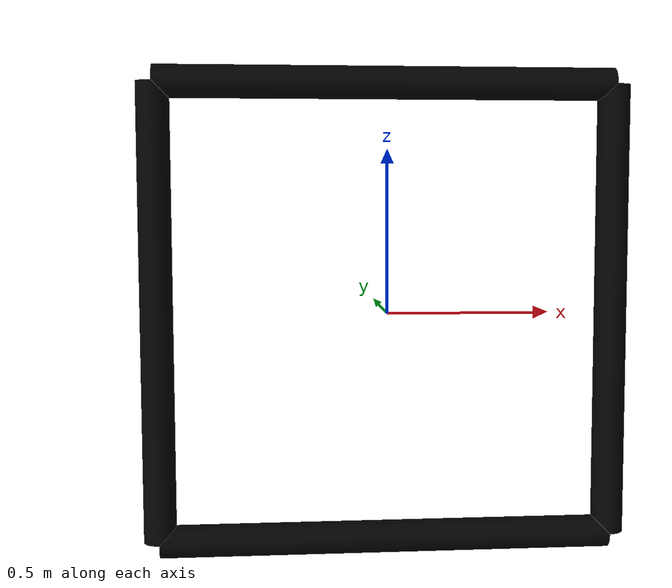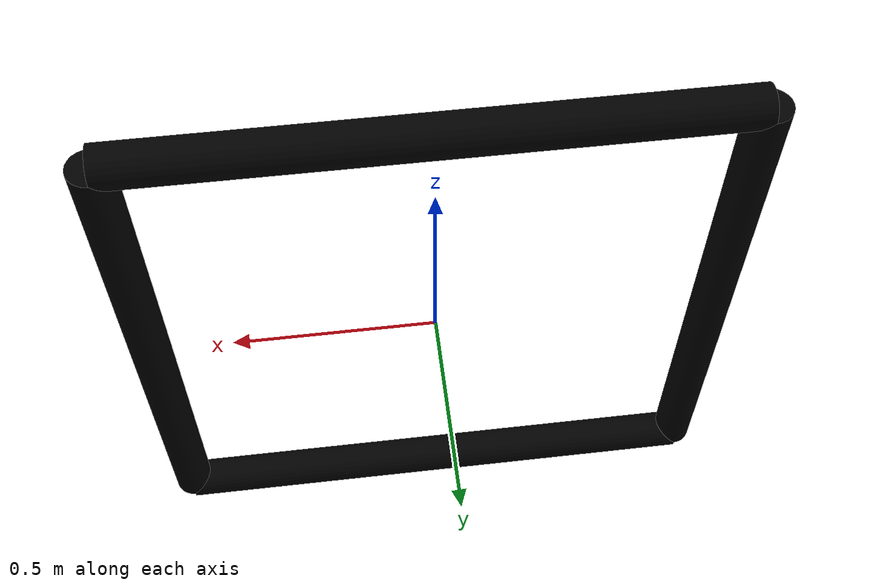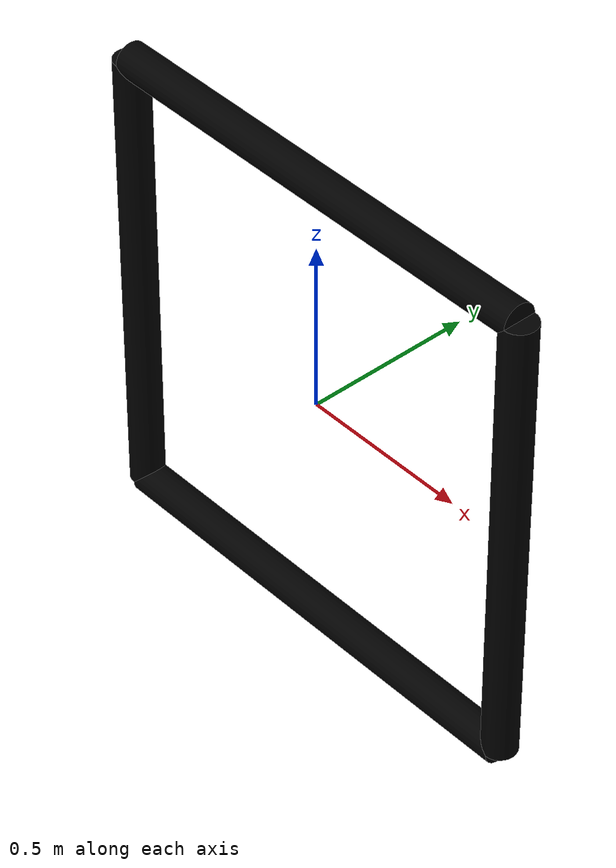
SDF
<?xml version="1.0"?>
<sdf version="1.4">
  <model name="Color Tutorial Model">
    <static>true</static>
    <link name="gate_link1">

      <visual name="horizontal_low">
        <pose>0 0 -0.7 0 1.5707 0</pose>
        <geometry>
          <cylinder>
            <radius>0.05</radius>
            <length>1.4</length>
          </cylinder>
        </geometry>
        <material> <!-- LED material -->
          <ambient>0 0 0 1</ambient>
          <diffuse>0 0 0 1</diffuse>
          <specular>0 0 0 0</specular>
          <emissive>0 1 0 1</emissive>
        </material> <!-- End LED material -->
      </visual>
      <visual name="horizontal_high">
        <pose>0 0 0.7 0 1.5707 0</pose>
        <geometry>
          <cylinder>
            <radius>0.05</radius>
            <length>1.4</length>
          </cylinder>
        </geometry>
        <material> <!-- LED material -->
          <ambient>0 0 0 1</ambient>
          <diffuse>0 0 0 1</diffuse>
          <specular>0 0 0 0</specular>
          <emissive>0 1 0 1</emissive>
        </material> <!-- End LED material -->
      </visual>
      <visual name="vertical_right">
        <pose>0.7 0 0.0 0 0 0</pose>
        <geometry>
          <cylinder>
            <radius>0.05</radius>
            <length>1.4</length>
          </cylinder>
        </geometry>
        <material> <!-- LED material -->
          <ambient>0 0 0 1</ambient>
          <diffuse>0 0 0 1</diffuse>
          <specular>0 0 0 0</specular>
          <emissive>0 1 0 1</emissive>
        </material> <!-- End LED material -->
      </visual>
      <visual name="vertical_left">
        <pose>-0.7 0 0.0 0 0 0</pose>
        <geometry>
          <cylinder>
            <radius>0.05</radius>
            <length>1.4</length>
          </cylinder>
        </geometry>
        <material> <!-- LED material -->
          <ambient>0 0 0 1</ambient>
          <diffuse>0 0 0 1</diffuse>
          <specular>0 0 0 0</specular>
          <emissive>0 1 0 1</emissive>
        </material> <!-- End LED material -->
      </visual>
    </link>
  </model>
</sdf>
